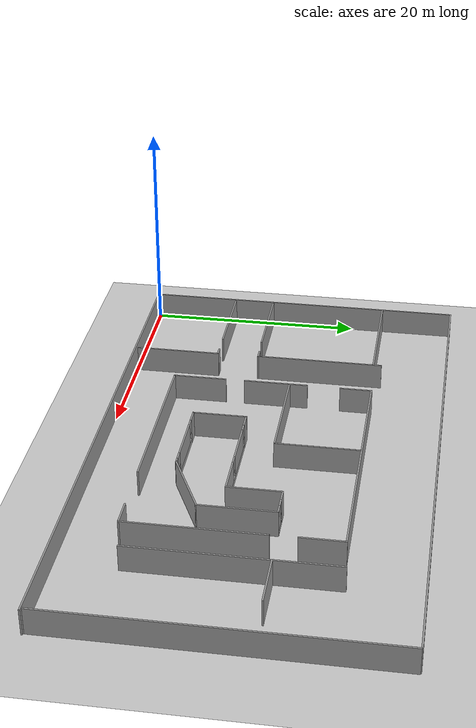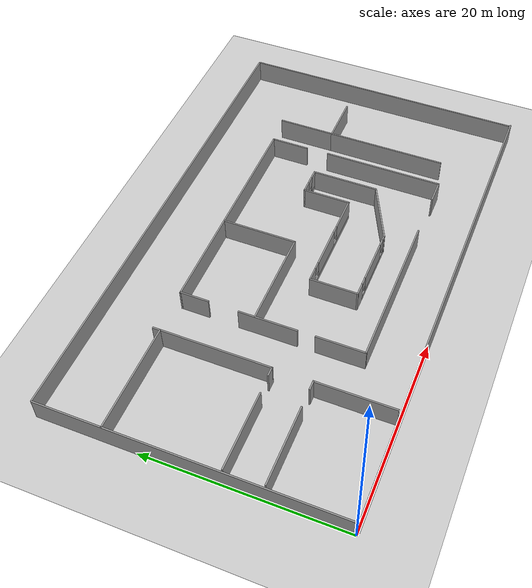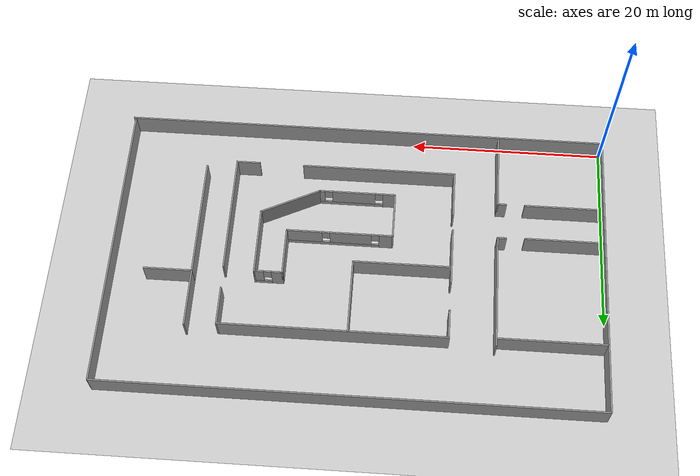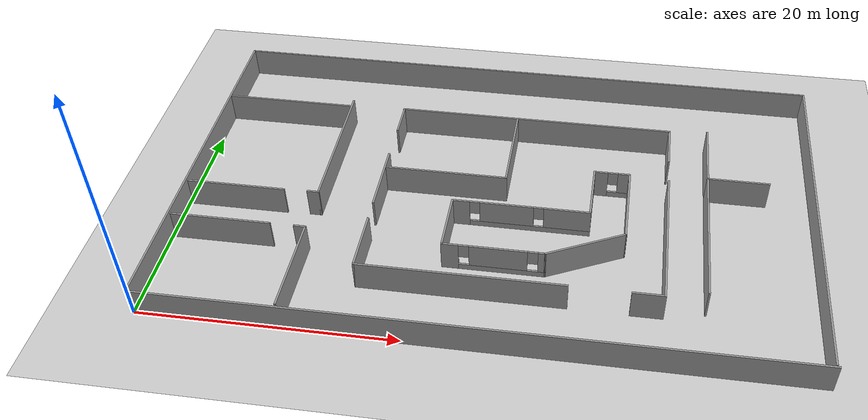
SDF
<sdf version="1.6">
 <world name="default">
  <light name="sun" type="directional">
   <pose>0 0 10 0 -0 0</pose>
   <diffuse>0.8 0.8 0.8 1</diffuse>
   <specular>0.1 0.1 0.1 1</specular>
   <attenuation>
    <range>1000</range>
    <constant>0.9</constant>
    <linear>0.01</linear>
    <quadratic>0.001</quadratic>
   </attenuation>
   <direction>-0.5 0.5 -1</direction>
  </light>
  <model name="ground_plane">
   <pose>10 5 0 0 -0 0</pose>
   <static>1</static>
   <link name="link">
    <collision name="collision">
     <geometry><plane><normal>0 0 1</normal><size>100 100</size></plane></geometry>
     <surface><friction><ode><mu>100</mu><mu2>50</mu2></ode></friction></surface>
    </collision>
    <visual name="visual">
     <cast_shadows>0</cast_shadows>
     <geometry><plane><normal>0 0 1</normal><size>100 100</size></plane></geometry>
     <material>
      <script><uri>file://media/materials/scripts/gazebo.material</uri><name>Gazebo/Grey</name></script>
     </material>
    </visual>
   </link>
  </model>
  <gravity>0 0 -9.8</gravity>
  <magnetic_field>6e-06 2.3e-05 -4.2e-05</magnetic_field>
  <atmosphere type="adiabatic"/>
  <physics name="default_physics" default="0" type="ode">
   <max_step_size>0.001</max_step_size>
   <real_time_factor>1</real_time_factor>
   <real_time_update_rate>1000</real_time_update_rate>
  </physics>
  <scene><ambient>0.4 0.4 0.4 1</ambient><background>0.7 0.7 0.7 1</background><shadows>1</shadows></scene>
  <spherical_coordinates>
   <surface_model>EARTH_WGS84</surface_model>
   <latitude_deg>0</latitude_deg>
   <longitude_deg>0</longitude_deg>
   <elevation>0</elevation>
   <heading_deg>0</heading_deg>
  </spherical_coordinates>
  <model name="50m_0">
   <pose>25.2223 -0.135263 0 0 -0 0</pose>
   <link name="Wall_16">
    <collision name="Wall_16_Collision">
     <geometry><box><size>50 0.15 2.5</size></box></geometry>
     <pose>0 0 1.25 0 -0 0</pose>
    </collision>
    <visual name="Wall_16_Visual">
     <pose>0 0 1.25 0 -0 0</pose>
     <geometry><box><size>50 0.15 2.5</size></box></geometry>
     <material>
      <script><uri>file://media/materials/scripts/gazebo.material</uri><name>Gazebo/Grey</name></script>
      <ambient>1 1 1 1</ambient>
     </material>
    </visual>
   </link>
   <static>1</static>
  </model>
  <model name="50m_1">
   <pose>25 30 0 0 -0 0</pose>
   <link name="Wall_16">
    <collision name="Wall_16_Collision">
     <geometry><box><size>50 0.15 2.5</size></box></geometry>
     <pose>0 0 1.25 0 -0 0</pose>
    </collision>
    <visual name="Wall_16_Visual">
     <pose>0 0 1.25 0 -0 0</pose>
     <geometry><box><size>50 0.15 2.5</size></box></geometry>
     <material>
      <script><uri>file://media/materials/scripts/gazebo.material</uri><name>Gazebo/Grey</name></script>
      <ambient>1 1 1 1</ambient>
     </material>
    </visual>
   </link>
   <static>1</static>
  </model>
  <model name="30m_0">
   <pose>0 15 0 0 -0 1.57</pose>
   <link name="Wall_20">
    <collision name="Wall_20_Collision">
     <geometry><box><size>30 0.15 2.5</size></box></geometry>
     <pose>0 0 1.25 0 -0 0</pose>
    </collision>
    <visual name="Wall_20_Visual">
     <pose>0 0 1.25 0 -0 0</pose>
     <geometry><box><size>30 0.15 2.5</size></box></geometry>
     <material>
      <script><uri>file://media/materials/scripts/gazebo.material</uri><name>Gazebo/Grey</name></script>
      <ambient>1 1 1 1</ambient>
     </material>
    </visual>
   </link>
   <static>1</static>
  </model>
  <model name="30m_1">
   <pose>50 15 0 0 -0 1.57</pose>
   <link name="Wall_20">
    <collision name="Wall_20_Collision">
     <geometry><box><size>30 0.15 2.5</size></box></geometry>
     <pose>0 0 1.25 0 -0 0</pose>
    </collision>
    <visual name="Wall_20_Visual">
     <pose>0 0 1.25 0 -0 0</pose>
     <geometry><box><size>30 0.15 2.5</size></box></geometry>
     <material>
      <script><uri>file://media/materials/scripts/gazebo.material</uri><name>Gazebo/Grey</name></script>
      <ambient>1 1 1 1</ambient>
     </material>
    </visual>
   </link>
   <static>1</static>
  </model>
  <model name="stone1">
   <pose>28.5 12.5 0 0 -0 0</pose>
   <link name="Wall_1">
    <pose>-2.93764 -4.83736 0 0 -0 0</pose>
    <visual name="Wall_1_Visual_0">
     <pose>-3.32522 0 1.25 0 -0 0</pose>
     <geometry><box><size>1.34956 0.15 2.5</size></box></geometry>
     <material>
      <script><uri>file://media/materials/scripts/gazebo.material</uri><name>Gazebo/Grey</name></script>
      <ambient>1 1 1 1</ambient>
     </material>
    </visual>
    <collision name="Wall_1_Collision_0">
     <geometry><box><size>1.34956 0.15 2.5</size></box></geometry>
     <pose>-3.32522 0 1.25 0 -0 0</pose>
    </collision>
    <visual name="Wall_1_Visual_1">
     <pose>0.674782 0 0.25 0 -0 0</pose>
     <geometry><box><size>6.65044 0.15 0.5</size></box></geometry>
     <material>
      <script><uri>file://media/materials/scripts/gazebo.material</uri><name>Gazebo/Grey</name></script>
      <ambient>1 1 1 1</ambient>
     </material>
    </visual>
    <collision name="Wall_1_Collision_1">
     <geometry><box><size>6.65044 0.15 0.5</size></box></geometry>
     <pose>0.674782 0 0.25 0 -0 0</pose>
    </collision>
    <visual name="Wall_1_Visual_2">
     <pose>0.372621 0 1.5 0 -0 0</pose>
     <geometry><box><size>4.44612 0.15 2</size></box></geometry>
     <material>
      <script><uri>file://media/materials/scripts/gazebo.material</uri><name>Gazebo/Grey</name></script>
      <ambient>1 1 1 1</ambient>
     </material>
    </visual>
    <collision name="Wall_1_Collision_2">
     <geometry><box><size>4.44612 0.15 2</size></box></geometry>
     <pose>0.372621 0 1.5 0 -0 0</pose>
    </collision>
    <visual name="Wall_1_Visual_3">
     <pose>3.69784 0 1.5 0 -0 0</pose>
     <geometry><box><size>0.60432 0.15 2</size></box></geometry>
     <material>
      <script><uri>file://media/materials/scripts/gazebo.material</uri><name>Gazebo/Grey</name></script>
      <ambient>1 1 1 1</ambient>
     </material>
    </visual>
    <collision name="Wall_1_Collision_3">
     <geometry><box><size>0.60432 0.15 2</size></box></geometry>
     <pose>3.69784 0 1.5 0 -0 0</pose>
    </collision>
    <visual name="Wall_1_Visual_4">
     <pose>-2.25044 0 1.9 0 -0 0</pose>
     <geometry><box><size>0.8 0.15 1.2</size></box></geometry>
     <material>
      <script><uri>file://media/materials/scripts/gazebo.material</uri><name>Gazebo/Grey</name></script>
      <ambient>1 1 1 1</ambient>
     </material>
    </visual>
    <collision name="Wall_1_Collision_4">
     <geometry><box><size>0.8 0.15 1.2</size></box></geometry>
     <pose>-2.25044 0 1.9 0 -0 0</pose>
    </collision>
    <visual name="Wall_1_Visual_5">
     <pose>2.99568 0 1.9 0 -0 0</pose>
     <geometry><box><size>0.8 0.15 1.2</size></box></geometry>
     <material>
      <script><uri>file://media/materials/scripts/gazebo.material</uri><name>Gazebo/Grey</name></script>
      <ambient>1 1 1 1</ambient>
     </material>
    </visual>
    <collision name="Wall_1_Collision_5">
     <geometry><box><size>0.8 0.15 1.2</size></box></geometry>
     <pose>2.99568 0 1.9 0 -0 0</pose>
    </collision>
   </link>
   <link name="Wall_10">
    <collision name="Wall_10_Collision">
     <geometry><box><size>7 0.15 2.5</size></box></geometry>
     <pose>0 0 1.25 0 -0 0</pose>
    </collision>
    <visual name="Wall_10_Visual">
     <pose>0 0 1.25 0 -0 0</pose>
     <geometry><box><size>7 0.15 2.5</size></box></geometry>
     <material>
      <script><uri>file://media/materials/scripts/gazebo.material</uri><name>Gazebo/Grey</name></script>
      <ambient>1 1 1 1</ambient>
     </material>
    </visual>
    <pose>6.83736 1.43764 0 0 0 -1.5708</pose>
   </link>
   <link name="Wall_11">
    <collision name="Wall_11_Collision">
     <geometry><box><size>6.6573 0.15 2.5</size></box></geometry>
     <pose>0 0 1.25 0 -0 0</pose>
    </collision>
    <visual name="Wall_11_Visual">
     <pose>0 0 1.25 0 -0 0</pose>
     <geometry><box><size>6.6573 0.15 2.5</size></box></geometry>
     <material>
      <script><uri>file://media/materials/scripts/gazebo.material</uri><name>Gazebo/Grey</name></script>
      <ambient>1 1 1 1</ambient>
     </material>
    </visual>
    <pose>3.91236 -3.41236 0 0 0 -2.68825</pose>
   </link>
   <link name="Wall_5">
    <collision name="Wall_5_Collision">
     <geometry><box><size>5 0.15 2.5</size></box></geometry>
     <pose>0 0 1.25 0 -0 0</pose>
    </collision>
    <visual name="Wall_5_Visual">
     <pose>0 0 1.25 0 -0 0</pose>
     <geometry><box><size>5 0.15 2.5</size></box></geometry>
     <material>
      <script><uri>file://media/materials/scripts/gazebo.material</uri><name>Gazebo/Grey</name></script>
      <ambient>1 1 1 1</ambient>
     </material>
    </visual>
    <pose>-6.86264 -2.41236 0 0 -0 1.5708</pose>
   </link>
   <link name="Wall_7">
    <pose>-1.43764 0.012636 0 0 -0 0</pose>
    <visual name="Wall_7_Visual_0">
     <pose>-4.77141 0 1.25 0 -0 0</pose>
     <geometry><box><size>1.45718 0.15 2.5</size></box></geometry>
     <material>
      <script><uri>file://media/materials/scripts/gazebo.material</uri><name>Gazebo/Grey</name></script>
      <ambient>1 1 1 1</ambient>
     </material>
    </visual>
    <collision name="Wall_7_Collision_0">
     <geometry><box><size>1.45718 0.15 2.5</size></box></geometry>
     <pose>-4.77141 0 1.25 0 -0 0</pose>
    </collision>
    <visual name="Wall_7_Visual_1">
     <pose>0.728588 0 0.25 0 -0 0</pose>
     <geometry><box><size>9.54282 0.15 0.5</size></box></geometry>
     <material>
      <script><uri>file://media/materials/scripts/gazebo.material</uri><name>Gazebo/Grey</name></script>
      <ambient>1 1 1 1</ambient>
     </material>
    </visual>
    <collision name="Wall_7_Collision_1">
     <geometry><box><size>9.54282 0.15 0.5</size></box></geometry>
     <pose>0.728588 0 0.25 0 -0 0</pose>
    </collision>
    <visual name="Wall_7_Visual_2">
     <pose>-1.11393 0 1.5 0 -0 0</pose>
     <geometry><box><size>4.25779 0.15 2</size></box></geometry>
     <material>
      <script><uri>file://media/materials/scripts/gazebo.material</uri><name>Gazebo/Grey</name></script>
      <ambient>1 1 1 1</ambient>
     </material>
    </visual>
    <collision name="Wall_7_Collision_2">
     <geometry><box><size>4.25779 0.15 2</size></box></geometry>
     <pose>-1.11393 0 1.5 0 -0 0</pose>
    </collision>
    <visual name="Wall_7_Visual_3">
     <pose>3.65748 0 1.5 0 -0 0</pose>
     <geometry><box><size>3.68503 0.15 2</size></box></geometry>
     <material>
      <script><uri>file://media/materials/scripts/gazebo.material</uri><name>Gazebo/Grey</name></script>
      <ambient>1 1 1 1</ambient>
     </material>
    </visual>
    <collision name="Wall_7_Collision_3">
     <geometry><box><size>3.68503 0.15 2</size></box></geometry>
     <pose>3.65748 0 1.5 0 -0 0</pose>
    </collision>
    <visual name="Wall_7_Visual_4">
     <pose>-3.64282 0 1.9 0 -0 0</pose>
     <geometry><box><size>0.8 0.15 1.2</size></box></geometry>
     <material>
      <script><uri>file://media/materials/scripts/gazebo.material</uri><name>Gazebo/Grey</name></script>
      <ambient>1 1 1 1</ambient>
     </material>
    </visual>
    <collision name="Wall_7_Collision_4">
     <geometry><box><size>0.8 0.15 1.2</size></box></geometry>
     <pose>-3.64282 0 1.9 0 -0 0</pose>
    </collision>
    <visual name="Wall_7_Visual_5">
     <pose>1.41497 0 1.9 0 -0 0</pose>
     <geometry><box><size>0.8 0.15 1.2</size></box></geometry>
     <material>
      <script><uri>file://media/materials/scripts/gazebo.material</uri><name>Gazebo/Grey</name></script>
      <ambient>1 1 1 1</ambient>
     </material>
    </visual>
    <collision name="Wall_7_Collision_5">
     <geometry><box><size>0.8 0.15 1.2</size></box></geometry>
     <pose>1.41497 0 1.9 0 -0 0</pose>
    </collision>
   </link>
   <link name="Wall_8">
    <collision name="Wall_8_Collision">
     <geometry><box><size>5 0.15 2.5</size></box></geometry>
     <pose>0 0 1.25 0 -0 0</pose>
    </collision>
    <visual name="Wall_8_Visual">
     <pose>0 0 1.25 0 -0 0</pose>
     <geometry><box><size>5 0.15 2.5</size></box></geometry>
     <material>
      <script><uri>file://media/materials/scripts/gazebo.material</uri><name>Gazebo/Grey</name></script>
      <ambient>1 1 1 1</ambient>
     </material>
    </visual>
    <pose>3.98737 2.43764 0 0 -0 1.5708</pose>
   </link>
   <link name="Wall_9">
    <pose>5.41236 4.86264 0 0 -0 0</pose>
    <visual name="Wall_9_Visual_0">
     <pose>-0.909941 0 1.25 0 -0 0</pose>
     <geometry><box><size>1.18012 0.15 2.5</size></box></geometry>
     <material>
      <script><uri>file://media/materials/scripts/gazebo.material</uri><name>Gazebo/Grey</name></script>
      <ambient>1 1 1 1</ambient>
     </material>
    </visual>
    <collision name="Wall_9_Collision_0">
     <geometry><box><size>1.18012 0.15 2.5</size></box></geometry>
     <pose>-0.909941 0 1.25 0 -0 0</pose>
    </collision>
    <visual name="Wall_9_Visual_1">
     <pose>0.590059 0 0.25 0 -0 0</pose>
     <geometry><box><size>1.81988 0.15 0.5</size></box></geometry>
     <material>
      <script><uri>file://media/materials/scripts/gazebo.material</uri><name>Gazebo/Grey</name></script>
      <ambient>1 1 1 1</ambient>
     </material>
    </visual>
    <collision name="Wall_9_Collision_1">
     <geometry><box><size>1.81988 0.15 0.5</size></box></geometry>
     <pose>0.590059 0 0.25 0 -0 0</pose>
    </collision>
    <visual name="Wall_9_Visual_2">
     <pose>0.990059 0 1.5 0 -0 0</pose>
     <geometry><box><size>1.01988 0.15 2</size></box></geometry>
     <material>
      <script><uri>file://media/materials/scripts/gazebo.material</uri><name>Gazebo/Grey</name></script>
      <ambient>1 1 1 1</ambient>
     </material>
    </visual>
    <collision name="Wall_9_Collision_2">
     <geometry><box><size>1.01988 0.15 2</size></box></geometry>
     <pose>0.990059 0 1.5 0 -0 0</pose>
    </collision>
    <visual name="Wall_9_Visual_3">
     <pose>0.080118 0 1.9 0 -0 0</pose>
     <geometry><box><size>0.8 0.15 1.2</size></box></geometry>
     <material>
      <script><uri>file://media/materials/scripts/gazebo.material</uri><name>Gazebo/Grey</name></script>
      <ambient>1 1 1 1</ambient>
     </material>
    </visual>
    <collision name="Wall_9_Collision_3">
     <geometry><box><size>0.8 0.15 1.2</size></box></geometry>
     <pose>0.080118 0 1.9 0 -0 0</pose>
    </collision>
   </link>
   <static>1</static>
  </model>
  <model name="Tshape_0">
   <pose>44 14.5 0 0 -0 0</pose>
   <link name="Wall_16">
    <collision name="Wall_16_Collision">
     <geometry><box><size>12.5 0.15 2.5</size></box></geometry>
     <pose>0 0 1.25 0 -0 0</pose>
    </collision>
    <visual name="Wall_16_Visual">
     <pose>0 0 1.25 0 -0 0</pose>
     <geometry><box><size>12.5 0.15 2.5</size></box></geometry>
     <material>
      <script><uri>file://media/materials/scripts/gazebo.material</uri><name>Gazebo/Grey</name></script>
      <ambient>1 1 1 1</ambient>
     </material>
    </visual>
    <pose>-2.425 -2.925 0 0 -0 1.5708</pose>
   </link>
   <link name="Wall_18">
    <collision name="Wall_18_Collision">
     <geometry><box><size>5 0.15 2.5</size></box></geometry>
     <pose>0 0 1.25 0 -0 0</pose>
    </collision>
    <visual name="Wall_18_Visual">
     <pose>0 0 1.25 0 -0 0</pose>
     <geometry><box><size>5 0.15 2.5</size></box></geometry>
     <material>
      <script><uri>file://media/materials/scripts/gazebo.material</uri><name>Gazebo/Grey</name></script>
      <ambient>1 1 1 1</ambient>
     </material>
    </visual>
    <pose>0 3.25 0 0 -0 0</pose>
   </link>
   <link name="Wall_22">
    <collision name="Wall_22_Collision">
     <geometry><box><size>6 0.15 2.5</size></box></geometry>
     <pose>0 0 1.25 0 -0 0</pose>
    </collision>
    <visual name="Wall_22_Visual">
     <pose>0 0 1.25 0 -0 0</pose>
     <geometry><box><size>6 0.15 2.5</size></box></geometry>
     <material>
      <script><uri>file://media/materials/scripts/gazebo.material</uri><name>Gazebo/Grey</name></script>
      <ambient>1 1 1 1</ambient>
     </material>
    </visual>
    <pose>-2.425 6.175 0 0 -0 1.5708</pose>
   </link>
   <static>1</static>
  </model>
  <model name="room_0">
   <pose>27 14 0 0 -0 0</pose>
   <link name="Wall_0">
    <collision name="Wall_0_Collision">
     <geometry><box><size>5 0.15 2.5</size></box></geometry>
     <pose>0 0 1.25 0 -0 0</pose>
    </collision>
    <visual name="Wall_0_Visual">
     <pose>0 0 1.25 0 -0 0</pose>
     <geometry><box><size>5 0.15 2.5</size></box></geometry>
     <material>
      <script><uri>file://media/materials/scripts/gazebo.material</uri><name>Gazebo/Grey</name></script>
      <ambient>1 1 1 1</ambient>
     </material>
    </visual>
    <pose>-11.4491 -6.86489 0 0 0 -1.5708</pose>
   </link>
   <link name="Wall_11">
    <collision name="Wall_11_Collision">
     <geometry><box><size>3 0.15 2.5</size></box></geometry>
     <pose>0 0 1.25 0 -0 0</pose>
    </collision>
    <visual name="Wall_11_Visual">
     <pose>0 0 1.25 0 -0 0</pose>
     <geometry><box><size>3 0.15 2.5</size></box></geometry>
     <material>
      <script><uri>file://media/materials/scripts/gazebo.material</uri><name>Gazebo/Grey</name></script>
      <ambient>1 1 1 1</ambient>
     </material>
    </visual>
    <pose>-11.4149 7.88074 0 0 -0 1.5708</pose>
   </link>
   <link name="Wall_2">
    <collision name="Wall_2_Collision">
     <geometry><box><size>16 0.15 2.5</size></box></geometry>
     <pose>0 0 1.25 0 -0 0</pose>
    </collision>
    <visual name="Wall_2_Visual">
     <pose>0 0 1.25 0 -0 0</pose>
     <geometry><box><size>16 0.15 2.5</size></box></geometry>
     <material>
      <script><uri>file://media/materials/scripts/gazebo.material</uri><name>Gazebo/Grey</name></script>
      <ambient>1 1 1 1</ambient>
     </material>
    </visual>
    <pose>-3.52409 -9.28989 0 0 -0 0</pose>
   </link>
   <link name="Wall_28">
    <collision name="Wall_28_Collision">
     <geometry><box><size>23 0.15 2.5</size></box></geometry>
     <pose>0 0 1.25 0 -0 0</pose>
    </collision>
    <visual name="Wall_28_Visual">
     <pose>0 0 1.25 0 -0 0</pose>
     <geometry><box><size>23 0.15 2.5</size></box></geometry>
     <material>
      <script><uri>file://media/materials/scripts/gazebo.material</uri><name>Gazebo/Grey</name></script>
      <ambient>1 1 1 1</ambient>
     </material>
    </visual>
    <pose>-0.007716 9.32301 0 0 -0 0</pose>
   </link>
   <link name="Wall_30">
    <collision name="Wall_30_Collision">
     <geometry><box><size>10 0.15 2.5</size></box></geometry>
     <pose>0 0 1.25 0 -0 0</pose>
    </collision>
    <visual name="Wall_30_Visual">
     <pose>0 0 1.25 0 -0 0</pose>
     <geometry><box><size>10 0.15 2.5</size></box></geometry>
     <material>
      <script><uri>file://media/materials/scripts/gazebo.material</uri><name>Gazebo/Grey</name></script>
      <ambient>1 1 1 1</ambient>
     </material>
    </visual>
    <pose>-6.44777 1.64458 0 0 -0 0</pose>
   </link>
   <link name="Wall_31">
    <collision name="Wall_31_Collision">
     <geometry><box><size>7.75 0.15 2.5</size></box></geometry>
     <pose>0 0 1.25 0 -0 0</pose>
    </collision>
    <visual name="Wall_31_Visual">
     <pose>0 0 1.25 0 -0 0</pose>
     <geometry><box><size>7.75 0.15 2.5</size></box></geometry>
     <material>
      <script><uri>file://media/materials/scripts/gazebo.material</uri><name>Gazebo/Grey</name></script>
      <ambient>1 1 1 1</ambient>
     </material>
    </visual>
    <pose>-1.52277 5.44458 0 0 -0 1.5708</pose>
   </link>
   <link name="Wall_33">
    <collision name="Wall_33_Collision">
     <geometry><box><size>4 0.15 2.5</size></box></geometry>
     <pose>0 0 1.25 0 -0 0</pose>
    </collision>
    <visual name="Wall_33_Visual">
     <pose>0 0 1.25 0 -0 0</pose>
     <geometry><box><size>4 0.15 2.5</size></box></geometry>
     <material>
      <script><uri>file://media/materials/scripts/gazebo.material</uri><name>Gazebo/Grey</name></script>
      <ambient>1 1 1 1</ambient>
     </material>
    </visual>
    <pose>11.4173 7.39802 0 0 0 -1.5708</pose>
   </link>
   <link name="Wall_35">
    <collision name="Wall_35_Collision">
     <geometry><box><size>12.5 0.15 2.5</size></box></geometry>
     <pose>0 0 1.25 0 -0 0</pose>
    </collision>
    <visual name="Wall_35_Visual">
     <pose>0 0 1.25 0 -0 0</pose>
     <geometry><box><size>12.5 0.15 2.5</size></box></geometry>
     <material>
      <script><uri>file://media/materials/scripts/gazebo.material</uri><name>Gazebo/Grey</name></script>
      <ambient>1 1 1 1</ambient>
     </material>
    </visual>
    <pose>11.4623 -3.14801 0 0 0 -1.5708</pose>
   </link>
   <link name="Wall_37">
    <collision name="Wall_37_Collision">
     <geometry><box><size>2.5 0.15 2.5</size></box></geometry>
     <pose>0 0 1.25 0 -0 0</pose>
    </collision>
    <visual name="Wall_37_Visual">
     <pose>0 0 1.25 0 -0 0</pose>
     <geometry><box><size>2.5 0.15 2.5</size></box></geometry>
     <material>
      <script><uri>file://media/materials/scripts/gazebo.material</uri><name>Gazebo/Grey</name></script>
      <ambient>1 1 1 1</ambient>
     </material>
    </visual>
    <pose>10.2873 -9.32301 0 0 -0 3.14159</pose>
   </link>
   <link name="Wall_7">
    <collision name="Wall_7_Collision">
     <geometry><box><size>6 0.15 2.5</size></box></geometry>
     <pose>0 0 1.25 0 -0 0</pose>
    </collision>
    <visual name="Wall_7_Visual">
     <pose>0 0 1.25 0 -0 0</pose>
     <geometry><box><size>6 0.15 2.5</size></box></geometry>
     <material>
      <script><uri>file://media/materials/scripts/gazebo.material</uri><name>Gazebo/Grey</name></script>
      <ambient>1 1 1 1</ambient>
     </material>
    </visual>
    <pose>-11.4623 0.346305 0 0 -0 1.5708</pose>
   </link>
   <static>1</static>
  </model>
  <model name="room2_1">
   <pose>5.5 12 0 0 -0 0</pose>
   <link name="Wall_13">
    <collision name="Wall_13_Collision">
     <geometry><box><size>8 0.15 2.5</size></box></geometry>
     <pose>0 0 1.25 0 -0 0</pose>
    </collision>
    <visual name="Wall_13_Visual">
     <pose>0 0 1.25 0 -0 0</pose>
     <geometry><box><size>8 0.15 2.5</size></box></geometry>
     <material>
      <script><uri>file://media/materials/scripts/gazebo.material</uri><name>Gazebo/Grey</name></script>
      <ambient>1 1 1 1</ambient>
     </material>
    </visual>
    <pose>-1.29158 -0.102539 0 0 -0 0</pose>
   </link>
   <link name="Wall_18">
    <collision name="Wall_18_Collision">
     <geometry><box><size>12 0.15 2.5</size></box></geometry>
     <pose>0 0 1.25 0 -0 0</pose>
    </collision>
    <visual name="Wall_18_Visual">
     <pose>0 0 1.25 0 -0 0</pose>
     <geometry><box><size>12 0.15 2.5</size></box></geometry>
     <material>
      <script><uri>file://media/materials/scripts/gazebo.material</uri><name>Gazebo/Grey</name></script>
      <ambient>1 1 1 1</ambient>
     </material>
    </visual>
    <pose>5.44426 5.8971 0 0 0 -1.5708</pose>
   </link>
   <link name="Wall_2">
    <collision name="Wall_2_Collision">
     <geometry><box><size>8 0.15 2.5</size></box></geometry>
     <pose>0 0 1.25 0 -0 0</pose>
    </collision>
    <visual name="Wall_2_Visual">
     <pose>0 0 1.25 0 -0 0</pose>
     <geometry><box><size>8 0.15 2.5</size></box></geometry>
     <material>
      <script><uri>file://media/materials/scripts/gazebo.material</uri><name>Gazebo/Grey</name></script>
      <ambient>1 1 1 1</ambient>
     </material>
    </visual>
    <pose>-1.27163 -3.9721 0 0 -0 0</pose>
   </link>
   <link name="Wall_28">
    <collision name="Wall_28_Collision">
     <geometry><box><size>1 0.15 2.5</size></box></geometry>
     <pose>0 0 1.25 0 -0 0</pose>
    </collision>
    <visual name="Wall_28_Visual">
     <pose>0 0 1.25 0 -0 0</pose>
     <geometry><box><size>1 0.15 2.5</size></box></geometry>
     <material>
      <script><uri>file://media/materials/scripts/gazebo.material</uri><name>Gazebo/Grey</name></script>
      <ambient>1 1 1 1</ambient>
     </material>
    </visual>
    <pose>5.01926 -0.027899 0 0 -0 3.14159</pose>
   </link>
   <link name="Wall_30">
    <collision name="Wall_30_Collision">
     <geometry><box><size>11 0.15 2.5</size></box></geometry>
     <pose>0 0 1.25 0 -0 0</pose>
    </collision>
    <visual name="Wall_30_Visual">
     <pose>0 0 1.25 0 -0 0</pose>
     <geometry><box><size>11 0.15 2.5</size></box></geometry>
     <material>
      <script><uri>file://media/materials/scripts/gazebo.material</uri><name>Gazebo/Grey</name></script>
      <ambient>1 1 1 1</ambient>
     </material>
    </visual>
    <pose>-0.058373 11.1038 0 0 -0 3.14159</pose>
   </link>
   <link name="Wall_7">
    <collision name="Wall_7_Collision">
     <geometry><box><size>1 0.15 2.5</size></box></geometry>
     <pose>0 0 1.25 0 -0 0</pose>
    </collision>
    <visual name="Wall_7_Visual">
     <pose>0 0 1.25 0 -0 0</pose>
     <geometry><box><size>1 0.15 2.5</size></box></geometry>
     <material>
      <script><uri>file://media/materials/scripts/gazebo.material</uri><name>Gazebo/Grey</name></script>
      <ambient>1 1 1 1</ambient>
     </material>
    </visual>
    <pose>5.05837 -3.9721 0 0 -0 0</pose>
   </link>
   <link name="Wall_9">
    <collision name="Wall_9_Collision">
     <geometry><box><size>8 0.15 2.5</size></box></geometry>
     <pose>0 0 1.25 0 -0 0</pose>
    </collision>
    <visual name="Wall_9_Visual">
     <pose>0 0 1.25 0 -0 0</pose>
     <geometry><box><size>8 0.15 2.5</size></box></geometry>
     <material>
      <script><uri>file://media/materials/scripts/gazebo.material</uri><name>Gazebo/Grey</name></script>
      <ambient>1 1 1 1</ambient>
     </material>
    </visual>
    <pose>5.48337 -7.8971 0 0 0 -1.5708</pose>
   </link>
   <static>1</static>
  </model>
 </world>
</sdf>
